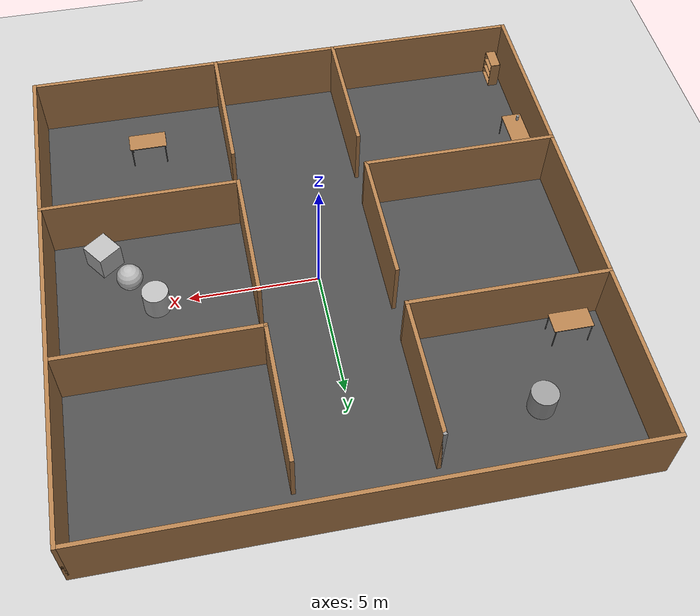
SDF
<sdf version="1.6">
 <world name="default">
  <light name="sun" type="directional">
   <pose>0 0 10 0 -0 0</pose>
   <diffuse>0.8 0.8 0.8 1</diffuse>
   <specular>0.2 0.2 0.2 1</specular>
   <attenuation>
    <range>1000</range>
    <constant>0.9</constant>
    <linear>0.01</linear>
    <quadratic>0.001</quadratic>
   </attenuation>
   <direction>-0.5 0.1 -0.9</direction>
   <spot><inner_angle>0</inner_angle><outer_angle>0</outer_angle><falloff>0</falloff></spot>
  </light>
  <model name="ground_plane">
   <static>1</static>
   <link name="link">
    <collision name="collision">
     <geometry><plane><normal>0 0 1</normal><size>100 100</size></plane></geometry>
     <surface>
      <contact><collide_bitmask>65535</collide_bitmask></contact>
      <friction><ode><mu>100</mu><mu2>50</mu2></ode></friction>
     </surface>
    </collision>
    <visual name="visual">
     <cast_shadows>0</cast_shadows>
     <geometry><plane><normal>0 0 1</normal><size>100 100</size></plane></geometry>
     <material>
      <script><uri>file://media/materials/scripts/gazebo.material</uri><name>Gazebo/Grey</name></script>
     </material>
    </visual>
   </link>
  </model>
  <gravity>0 0 -9.8</gravity>
  <magnetic_field>6e-06 2.3e-05 -4.2e-05</magnetic_field>
  <atmosphere type="adiabatic"/>
  <physics name="default_physics" default="0" type="ode">
   <max_step_size>0.001</max_step_size>
   <real_time_factor>1</real_time_factor>
   <real_time_update_rate>1000</real_time_update_rate>
  </physics>
  <scene><ambient>0.4 0.4 0.4 1</ambient><background>0.7 0.7 0.7 1</background><shadows>1</shadows></scene>
  <audio><device>default</device></audio>
  <spherical_coordinates>
   <surface_model>EARTH_WGS84</surface_model>
   <latitude_deg>0</latitude_deg>
   <longitude_deg>0</longitude_deg>
   <elevation>0</elevation>
   <heading_deg>0</heading_deg>
  </spherical_coordinates>
  <model name="building1">
   <link name="Wall_12">
    <collision name="Wall_12_Collision">
     <geometry><box><size>20.15 0.15 2.5</size></box></geometry>
     <pose>0 0 1.25 0 -0 0</pose>
    </collision>
    <visual name="Wall_12_Visual">
     <pose>0 0 1.25 0 -0 0</pose>
     <geometry><box><size>20.15 0.15 2.5</size></box></geometry>
     <material>
      <script><uri>file://media/materials/scripts/gazebo.material</uri><name>Gazebo/Wood</name></script>
      <ambient>1 1 1 1</ambient>
     </material>
     <meta><layer>0</layer></meta>
    </visual>
    <pose>10 0 0 0 -0 -1.5708</pose>
   </link>
   <link name="Wall_16">
    <collision name="Wall_16_Collision">
     <geometry><box><size>0.15 0.15 2.5</size></box></geometry>
     <pose>0 0 1.25 0 -0 0</pose>
    </collision>
    <visual name="Wall_16_Visual">
     <pose>0 0 1.25 0 -0 0</pose>
     <geometry><box><size>0.15 0.15 2.5</size></box></geometry>
     <material>
      <script><uri>file://media/materials/scripts/gazebo.material</uri><name>Gazebo/Grey</name></script>
      <ambient>1 1 1 1</ambient>
     </material>
     <meta><layer>0</layer></meta>
    </visual>
    <pose>-2.5 8.5 0 0 -0 0</pose>
   </link>
   <link name="Wall_17">
    <collision name="Wall_17_Collision">
     <geometry><box><size>5.317 0.15 2.5</size></box></geometry>
     <pose>0 0 1.25 0 -0 0</pose>
    </collision>
    <visual name="Wall_17_Visual">
     <pose>0 0 1.25 0 -0 0</pose>
     <geometry><box><size>5.317 0.15 2.5</size></box></geometry>
     <material>
      <script><uri>file://media/materials/scripts/gazebo.material</uri><name>Gazebo/Wood</name></script>
      <ambient>1 1 1 1</ambient>
     </material>
     <meta><layer>0</layer></meta>
    </visual>
    <pose>-2.5 5.9165 0 0 -0 -1.5708</pose>
   </link>
   <link name="Wall_20">
    <collision name="Wall_20_Collision">
     <geometry><box><size>7.65 0.15 2.5</size></box></geometry>
     <pose>0 0 1.25 0 -0 0</pose>
    </collision>
    <visual name="Wall_20_Visual">
     <pose>0 0 1.25 0 -0 0</pose>
     <geometry><box><size>7.65 0.15 2.5</size></box></geometry>
     <material>
      <script><uri>file://media/materials/scripts/gazebo.material</uri><name>Gazebo/Wood</name></script>
      <ambient>1 1 1 1</ambient>
     </material>
     <meta><layer>0</layer></meta>
    </visual>
    <pose>-6.25 3.333 0 0 -0 3.14159</pose>
   </link>
   <link name="Wall_23">
    <collision name="Wall_23_Collision">
     <geometry><box><size>5.316 0.15 2.5</size></box></geometry>
     <pose>0 0 1.25 0 -0 0</pose>
    </collision>
    <visual name="Wall_23_Visual">
     <pose>0 0 1.25 0 -0 0</pose>
     <geometry><box><size>5.316 0.15 2.5</size></box></geometry>
     <material>
      <script><uri>file://media/materials/scripts/gazebo.material</uri><name>Gazebo/Wood</name></script>
      <ambient>1 1 1 1</ambient>
     </material>
     <meta><layer>0</layer></meta>
    </visual>
    <pose>-2.5 -0.75 0 0 -0 -1.5708</pose>
   </link>
   <link name="Wall_27">
    <collision name="Wall_27_Collision">
     <geometry><box><size>7.65 0.15 2.5</size></box></geometry>
     <pose>0 0 1.25 0 -0 0</pose>
    </collision>
    <visual name="Wall_27_Visual">
     <pose>0 0 1.25 0 -0 0</pose>
     <geometry><box><size>7.65 0.15 2.5</size></box></geometry>
     <material>
      <script><uri>file://media/materials/scripts/gazebo.material</uri><name>Gazebo/Wood</name></script>
      <ambient>1 1 1 1</ambient>
     </material>
     <meta><layer>0</layer></meta>
    </visual>
    <pose>-6.25 -3.333 0 0 -0 0</pose>
   </link>
   <link name="Wall_3">
    <collision name="Wall_3_Collision">
     <geometry><box><size>20.15 0.15 2.5</size></box></geometry>
     <pose>0 0 1.25 0 -0 0</pose>
    </collision>
    <visual name="Wall_3_Visual">
     <pose>0 0 1.25 0 -0 0</pose>
     <geometry><box><size>20.15 0.15 2.5</size></box></geometry>
     <material>
      <script><uri>file://media/materials/scripts/gazebo.material</uri><name>Gazebo/Wood</name></script>
      <ambient>1 1 1 1</ambient>
     </material>
     <meta><layer>0</layer></meta>
    </visual>
    <pose>0 -10 0 0 -0 0</pose>
   </link>
   <link name="Wall_30">
    <collision name="Wall_30_Collision">
     <geometry><box><size>5.317 0.15 2.5</size></box></geometry>
     <pose>0 0 1.25 0 -0 0</pose>
    </collision>
    <visual name="Wall_30_Visual">
     <pose>0 0 1.25 0 -0 0</pose>
     <geometry><box><size>5.317 0.15 2.5</size></box></geometry>
     <material>
      <script><uri>file://media/materials/scripts/gazebo.material</uri><name>Gazebo/Wood</name></script>
      <ambient>1 1 1 1</ambient>
     </material>
     <meta><layer>0</layer></meta>
    </visual>
    <pose>-2.5 -7.4165 0 0 -0 -1.5708</pose>
   </link>
   <link name="Wall_33">
    <collision name="Wall_33_Collision">
     <geometry><box><size>5.317 0.15 2.5</size></box></geometry>
     <pose>0 0 1.25 0 -0 0</pose>
    </collision>
    <visual name="Wall_33_Visual">
     <pose>0 0 1.25 0 -0 0</pose>
     <geometry><box><size>5.317 0.15 2.5</size></box></geometry>
     <material>
      <script><uri>file://media/materials/scripts/gazebo.material</uri><name>Gazebo/Wood</name></script>
      <ambient>1 1 1 1</ambient>
     </material>
     <meta><layer>0</layer></meta>
    </visual>
    <pose>2.5 5.9165 0 0 -0 -1.5708</pose>
   </link>
   <link name="Wall_35">
    <collision name="Wall_35_Collision">
     <geometry><box><size>7.65 0.15 2.5</size></box></geometry>
     <pose>0 0 1.25 0 -0 0</pose>
    </collision>
    <visual name="Wall_35_Visual">
     <pose>0 0 1.25 0 -0 0</pose>
     <geometry><box><size>7.65 0.15 2.5</size></box></geometry>
     <material>
      <script><uri>file://media/materials/scripts/gazebo.material</uri><name>Gazebo/Wood</name></script>
      <ambient>1 1 1 1</ambient>
     </material>
     <meta><layer>0</layer></meta>
    </visual>
    <pose>6.25 3.333 0 0 -0 0</pose>
   </link>
   <link name="Wall_37">
    <collision name="Wall_37_Collision">
     <geometry><box><size>5.316 0.15 2.5</size></box></geometry>
     <pose>0 0 1.25 0 -0 0</pose>
    </collision>
    <visual name="Wall_37_Visual">
     <pose>0 0 1.25 0 -0 0</pose>
     <geometry><box><size>5.316 0.15 2.5</size></box></geometry>
     <material>
      <script><uri>file://media/materials/scripts/gazebo.material</uri><name>Gazebo/Wood</name></script>
      <ambient>1 1 1 1</ambient>
     </material>
     <meta><layer>0</layer></meta>
    </visual>
    <pose>2.5 -0.75 0 0 -0 -1.5708</pose>
   </link>
   <link name="Wall_39">
    <collision name="Wall_39_Collision">
     <geometry><box><size>7.65 0.15 2.5</size></box></geometry>
     <pose>0 0 1.25 0 -0 0</pose>
    </collision>
    <visual name="Wall_39_Visual">
     <pose>0 0 1.25 0 -0 0</pose>
     <geometry><box><size>7.65 0.15 2.5</size></box></geometry>
     <material>
      <script><uri>file://media/materials/scripts/gazebo.material</uri><name>Gazebo/Wood</name></script>
      <ambient>1 1 1 1</ambient>
     </material>
     <meta><layer>0</layer></meta>
    </visual>
    <pose>6.25 -3.333 0 0 -0 0</pose>
   </link>
   <link name="Wall_41">
    <collision name="Wall_41_Collision">
     <geometry><box><size>5.317 0.15 2.5</size></box></geometry>
     <pose>0 0 1.25 0 -0 0</pose>
    </collision>
    <visual name="Wall_41_Visual">
     <pose>0 0 1.25 0 -0 0</pose>
     <geometry><box><size>5.317 0.15 2.5</size></box></geometry>
     <material>
      <script><uri>file://media/materials/scripts/gazebo.material</uri><name>Gazebo/Wood</name></script>
      <ambient>1 1 1 1</ambient>
     </material>
     <meta><layer>0</layer></meta>
    </visual>
    <pose>2.5 -7.4165 0 0 -0 -1.5708</pose>
   </link>
   <link name="Wall_6">
    <collision name="Wall_6_Collision">
     <geometry><box><size>20.15 0.15 2.5</size></box></geometry>
     <pose>0 0 1.25 0 -0 0</pose>
    </collision>
    <visual name="Wall_6_Visual">
     <pose>0 0 1.25 0 -0 0</pose>
     <geometry><box><size>20.15 0.15 2.5</size></box></geometry>
     <material>
      <script><uri>file://media/materials/scripts/gazebo.material</uri><name>Gazebo/Wood</name></script>
      <ambient>1 1 1 1</ambient>
     </material>
     <meta><layer>0</layer></meta>
    </visual>
    <pose>-10 0 0 0 -0 1.5708</pose>
   </link>
   <link name="Wall_9">
    <collision name="Wall_9_Collision">
     <geometry><box><size>20.15 0.15 2.5</size></box></geometry>
     <pose>0 0 1.25 0 -0 0</pose>
    </collision>
    <visual name="Wall_9_Visual">
     <pose>0 0 1.25 0 -0 0</pose>
     <geometry><box><size>20.15 0.15 2.5</size></box></geometry>
     <material>
      <script><uri>file://media/materials/scripts/gazebo.material</uri><name>Gazebo/Wood</name></script>
      <ambient>1 1 1 1</ambient>
     </material>
     <meta><layer>0</layer></meta>
    </visual>
    <pose>0 10 0 0 -0 0</pose>
   </link>
   <static>1</static>
  </model>
  <model name="bookshelf">
   <static>1</static>
   <link name="link">
    <inertial><mass>1</mass></inertial>
    <collision name="back">
     <pose>0 0.005 0.6 0 -0 0</pose>
     <geometry><box><size>0.9 0.01 1.2</size></box></geometry>
    </collision>
    <visual name="visual1">
     <pose>0 0.005 0.6 0 -0 0</pose>
     <geometry><box><size>0.9 0.01 1.2</size></box></geometry>
     <material>
      <script><uri>file://media/materials/scripts/gazebo.material</uri><name>Gazebo/Wood</name></script>
     </material>
    </visual>
    <collision name="left_side">
     <pose>0.45 -0.195 0.6 0 -0 0</pose>
     <geometry><box><size>0.02 0.4 1.2</size></box></geometry>
    </collision>
    <visual name="visual2">
     <pose>0.45 -0.195 0.6 0 -0 0</pose>
     <geometry><box><size>0.02 0.4 1.2</size></box></geometry>
     <material>
      <script><uri>file://media/materials/scripts/gazebo.material</uri><name>Gazebo/Wood</name></script>
     </material>
    </visual>
    <collision name="right_side">
     <pose>-0.45 -0.195 0.6 0 -0 0</pose>
     <geometry><box><size>0.02 0.4 1.2</size></box></geometry>
    </collision>
    <visual name="visual3">
     <pose>-0.45 -0.195 0.6 0 -0 0</pose>
     <geometry><box><size>0.02 0.4 1.2</size></box></geometry>
     <material>
      <script><uri>file://media/materials/scripts/gazebo.material</uri><name>Gazebo/Wood</name></script>
     </material>
    </visual>
    <collision name="bottom">
     <pose>0 -0.195 0.03 0 -0 0</pose>
     <geometry><box><size>0.88 0.4 0.06</size></box></geometry>
    </collision>
    <visual name="visual4">
     <pose>0 -0.195 0.03 0 -0 0</pose>
     <geometry><box><size>0.88 0.4 0.06</size></box></geometry>
     <material>
      <script><uri>file://media/materials/scripts/gazebo.material</uri><name>Gazebo/Wood</name></script>
     </material>
    </visual>
    <collision name="top">
     <pose>0 -0.195 1.19 0 -0 0</pose>
     <geometry><box><size>0.88 0.4 0.02</size></box></geometry>
    </collision>
    <visual name="visual5">
     <pose>0 -0.195 1.19 0 -0 0</pose>
     <geometry><box><size>0.88 0.4 0.02</size></box></geometry>
     <material>
      <script><uri>file://media/materials/scripts/gazebo.material</uri><name>Gazebo/Wood</name></script>
     </material>
    </visual>
    <collision name="low_shelf">
     <pose>0 -0.195 0.43 0 -0 0</pose>
     <geometry><box><size>0.88 0.4 0.02</size></box></geometry>
    </collision>
    <visual name="visual6">
     <pose>0 -0.195 0.43 0 -0 0</pose>
     <geometry><box><size>0.88 0.4 0.02</size></box></geometry>
     <material>
      <script><uri>file://media/materials/scripts/gazebo.material</uri><name>Gazebo/Wood</name></script>
     </material>
    </visual>
    <collision name="high_shelf">
     <pose>0 -0.195 0.8 0 -0 0</pose>
     <geometry><box><size>0.88 0.4 0.02</size></box></geometry>
    </collision>
    <visual name="visual7">
     <pose>0 -0.195 0.8 0 -0 0</pose>
     <geometry><box><size>0.88 0.4 0.02</size></box></geometry>
     <material>
      <script><uri>file://media/materials/scripts/gazebo.material</uri><name>Gazebo/Wood</name></script>
     </material>
    </visual>
   </link>
   <pose>-9.76582 -9.42853 0 0 -0 1.55285</pose>
  </model>
  <model name="table">
   <static>1</static>
   <link name="link">
    <collision name="surface">
     <pose>0 0 1 0 -0 0</pose>
     <geometry><box><size>1.5 0.8 0.03</size></box></geometry>
     <surface><friction><ode><mu>0.6</mu><mu2>0.6</mu2></ode></friction></surface>
    </collision>
    <visual name="visual1">
     <pose>0 0 1 0 -0 0</pose>
     <geometry><box><size>1.5 0.8 0.03</size></box></geometry>
     <material>
      <script><uri>file://media/materials/scripts/gazebo.material</uri><name>Gazebo/Wood</name></script>
     </material>
    </visual>
    <collision name="front_left_leg">
     <pose>0.68 0.38 0.5 0 -0 0</pose>
     <geometry><cylinder><radius>0.02</radius><length>1</length></cylinder></geometry>
    </collision>
    <visual name="front_left_leg">
     <pose>0.68 0.38 0.5 0 -0 0</pose>
     <geometry><cylinder><radius>0.02</radius><length>1</length></cylinder></geometry>
     <material>
      <script><uri>file://media/materials/scripts/gazebo.material</uri><name>Gazebo/Grey</name></script>
     </material>
    </visual>
    <collision name="front_right_leg">
     <pose>0.68 -0.38 0.5 0 -0 0</pose>
     <geometry><cylinder><radius>0.02</radius><length>1</length></cylinder></geometry>
    </collision>
    <visual name="front_right_leg">
     <pose>0.68 -0.38 0.5 0 -0 0</pose>
     <geometry><cylinder><radius>0.02</radius><length>1</length></cylinder></geometry>
     <material>
      <script><uri>file://media/materials/scripts/gazebo.material</uri><name>Gazebo/Grey</name></script>
     </material>
    </visual>
    <collision name="back_right_leg">
     <pose>-0.68 -0.38 0.5 0 -0 0</pose>
     <geometry><cylinder><radius>0.02</radius><length>1</length></cylinder></geometry>
    </collision>
    <visual name="back_right_leg">
     <pose>-0.68 -0.38 0.5 0 -0 0</pose>
     <geometry><cylinder><radius>0.02</radius><length>1</length></cylinder></geometry>
     <material>
      <script><uri>file://media/materials/scripts/gazebo.material</uri><name>Gazebo/Grey</name></script>
     </material>
    </visual>
    <collision name="back_left_leg">
     <pose>-0.68 0.38 0.5 0 -0 0</pose>
     <geometry><cylinder><radius>0.02</radius><length>1</length></cylinder></geometry>
    </collision>
    <visual name="back_left_leg">
     <pose>-0.68 0.38 0.5 0 -0 0</pose>
     <geometry><cylinder><radius>0.02</radius><length>1</length></cylinder></geometry>
     <material>
      <script><uri>file://media/materials/scripts/gazebo.material</uri><name>Gazebo/Grey</name></script>
     </material>
    </visual>
   </link>
   <pose>-8.99386 -4.18417 0 0 -0 0</pose>
  </model>
  <model name="table_0">
   <static>1</static>
   <link name="link">
    <collision name="surface">
     <pose>0 0 1 0 -0 0</pose>
     <geometry><box><size>1.5 0.8 0.03</size></box></geometry>
     <surface><friction><ode><mu>0.6</mu><mu2>0.6</mu2></ode></friction></surface>
    </collision>
    <visual name="visual1">
     <pose>0 0 1 0 -0 0</pose>
     <geometry><box><size>1.5 0.8 0.03</size></box></geometry>
     <material>
      <script><uri>file://media/materials/scripts/gazebo.material</uri><name>Gazebo/Wood</name></script>
     </material>
    </visual>
    <collision name="front_left_leg">
     <pose>0.68 0.38 0.5 0 -0 0</pose>
     <geometry><cylinder><radius>0.02</radius><length>1</length></cylinder></geometry>
    </collision>
    <visual name="front_left_leg">
     <pose>0.68 0.38 0.5 0 -0 0</pose>
     <geometry><cylinder><radius>0.02</radius><length>1</length></cylinder></geometry>
     <material>
      <script><uri>file://media/materials/scripts/gazebo.material</uri><name>Gazebo/Grey</name></script>
     </material>
    </visual>
    <collision name="front_right_leg">
     <pose>0.68 -0.38 0.5 0 -0 0</pose>
     <geometry><cylinder><radius>0.02</radius><length>1</length></cylinder></geometry>
    </collision>
    <visual name="front_right_leg">
     <pose>0.68 -0.38 0.5 0 -0 0</pose>
     <geometry><cylinder><radius>0.02</radius><length>1</length></cylinder></geometry>
     <material>
      <script><uri>file://media/materials/scripts/gazebo.material</uri><name>Gazebo/Grey</name></script>
     </material>
    </visual>
    <collision name="back_right_leg">
     <pose>-0.68 -0.38 0.5 0 -0 0</pose>
     <geometry><cylinder><radius>0.02</radius><length>1</length></cylinder></geometry>
    </collision>
    <visual name="back_right_leg">
     <pose>-0.68 -0.38 0.5 0 -0 0</pose>
     <geometry><cylinder><radius>0.02</radius><length>1</length></cylinder></geometry>
     <material>
      <script><uri>file://media/materials/scripts/gazebo.material</uri><name>Gazebo/Grey</name></script>
     </material>
    </visual>
    <collision name="back_left_leg">
     <pose>-0.68 0.38 0.5 0 -0 0</pose>
     <geometry><cylinder><radius>0.02</radius><length>1</length></cylinder></geometry>
    </collision>
    <visual name="back_left_leg">
     <pose>-0.68 0.38 0.5 0 -0 0</pose>
     <geometry><cylinder><radius>0.02</radius><length>1</length></cylinder></geometry>
     <material>
      <script><uri>file://media/materials/scripts/gazebo.material</uri><name>Gazebo/Grey</name></script>
     </material>
    </visual>
   </link>
   <pose>-9.40517 -5.38692 0 0 0 -1.56327</pose>
  </model>
  <model name="beer">
   <link name="link">
    <pose>0 0 0.115 0 -0 0</pose>
    <inertial>
     <mass>0.39</mass>
     <inertia><ixx>0.00058</ixx><ixy>0</ixy><ixz>0</ixz><iyy>0.00058</iyy><iyz>0</iyz><izz>0.00019</izz></inertia>
    </inertial>
    <collision name="collision">
     <geometry><cylinder><radius>0.055</radius><length>0.23</length></cylinder></geometry>
    </collision>
    <visual name="visual">
     <geometry><cylinder><radius>0.055</radius><length>0.23</length></cylinder></geometry>
     <material>
      <script>
       <uri>model://beer/materials/scripts</uri>
       <uri>model://beer/materials/textures</uri>
       <name>Beer/Diffuse</name>
      </script>
     </material>
    </visual>
   </link>
   <pose>-9.57942 -5.81676 1.015 7e-06 7.3e-05 -0.000935</pose>
  </model>
  <model name="cabinet">
   <static>1</static>
   <link name="cabinet_bottom_plate">
    <inertial>
     <pose>0 0 -1 0 -0 0</pose>
     <inertia><ixx>2.05</ixx><ixy>0</ixy><ixz>0</ixz><iyy>2.05</iyy><iyz>0</iyz><izz>2.05</izz></inertia>
     <mass>25</mass>
    </inertial>
    <collision name="cabinet_bottom_plate_geom">
     <pose>0 0 0.01 0 -0 0</pose>
     <geometry><box><size>0.45 0.45 0.02</size></box></geometry>
    </collision>
    <visual name="cabinet_bottom_plate_geom_visual">
     <pose>0 0 0.01 0 -0 0</pose>
     <geometry><box><size>0.45 0.45 0.02</size></box></geometry>
     <material>
      <script><uri>file://media/materials/scripts/gazebo.material</uri><name>Gazebo/Wood</name></script>
     </material>
    </visual>
    <collision name="cabinet_bottom_plate_geom_cabinet_back_plate">
     <pose>0.235 0 0.51 0 -0 0</pose>
     <geometry><box><size>0.02 0.45 1.02</size></box></geometry>
    </collision>
    <visual name="cabinet_bottom_plate_geom_cabinet_back_plate_visual">
     <pose>0.235 0 0.51 0 -0 0</pose>
     <geometry><box><size>0.02 0.45 1.02</size></box></geometry>
     <material>
      <script><uri>file://media/materials/scripts/gazebo.material</uri><name>Gazebo/Wood</name></script>
     </material>
    </visual>
    <collision name="cabinet_bottom_plate_geom_cabinet_left_plate">
     <pose>0 0.235 0.51 0 -0 0</pose>
     <geometry><box><size>0.45 0.02 1.02</size></box></geometry>
    </collision>
    <visual name="cabinet_bottom_plate_geom_cabinet_left_plate_visual">
     <pose>0 0.235 0.51 0 -0 0</pose>
     <geometry><box><size>0.45 0.02 1.02</size></box></geometry>
     <material>
      <script><uri>file://media/materials/scripts/gazebo.material</uri><name>Gazebo/Wood</name></script>
     </material>
    </visual>
    <collision name="cabinet_bottom_plate_geom_cabinet_middle_plate">
     <pose>0 0 0.51 0 -0 0</pose>
     <geometry><box><size>0.45 0.45 0.02</size></box></geometry>
    </collision>
    <visual name="cabinet_bottom_plate_geom_cabinet_middle_plate_visual">
     <pose>0 0 0.51 0 -0 0</pose>
     <geometry><box><size>0.45 0.45 0.02</size></box></geometry>
     <material>
      <script><uri>file://media/materials/scripts/gazebo.material</uri><name>Gazebo/Wood</name></script>
     </material>
    </visual>
    <collision name="cabinet_bottom_plate_geom_cabinet_right_plate">
     <pose>0 -0.235 0.51 0 -0 0</pose>
     <geometry><box><size>0.45 0.02 1.02</size></box></geometry>
    </collision>
    <visual name="cabinet_bottom_plate_geom_cabinet_right_plate_visual">
     <pose>0 -0.235 0.51 0 -0 0</pose>
     <geometry><box><size>0.45 0.02 1.02</size></box></geometry>
     <material>
      <script><uri>file://media/materials/scripts/gazebo.material</uri><name>Gazebo/Wood</name></script>
     </material>
    </visual>
    <collision name="cabinet_bottom_plate_geom_cabinet_top_plate">
     <pose>0 0 1.01 0 -0 0</pose>
     <geometry><box><size>0.45 0.45 0.02</size></box></geometry>
    </collision>
    <visual name="cabinet_bottom_plate_geom_cabinet_top_plate_visual">
     <pose>0 0 1.01 0 -0 0</pose>
     <geometry><box><size>0.45 0.45 0.02</size></box></geometry>
     <material>
      <script><uri>file://media/materials/scripts/gazebo.material</uri><name>Gazebo/Wood</name></script>
     </material>
    </visual>
   </link>
   <pose>9.5834 -4.10026 0 0 -0 0</pose>
  </model>
  <model name="table_1">
   <static>1</static>
   <link name="link">
    <collision name="surface">
     <pose>0 0 1 0 -0 0</pose>
     <geometry><box><size>1.5 0.8 0.03</size></box></geometry>
     <surface><friction><ode><mu>0.6</mu><mu2>0.6</mu2></ode></friction></surface>
    </collision>
    <visual name="visual1">
     <pose>0 0 1 0 -0 0</pose>
     <geometry><box><size>1.5 0.8 0.03</size></box></geometry>
     <material>
      <script><uri>file://media/materials/scripts/gazebo.material</uri><name>Gazebo/Wood</name></script>
     </material>
    </visual>
    <collision name="front_left_leg">
     <pose>0.68 0.38 0.5 0 -0 0</pose>
     <geometry><cylinder><radius>0.02</radius><length>1</length></cylinder></geometry>
    </collision>
    <visual name="front_left_leg">
     <pose>0.68 0.38 0.5 0 -0 0</pose>
     <geometry><cylinder><radius>0.02</radius><length>1</length></cylinder></geometry>
     <material>
      <script><uri>file://media/materials/scripts/gazebo.material</uri><name>Gazebo/Grey</name></script>
     </material>
    </visual>
    <collision name="front_right_leg">
     <pose>0.68 -0.38 0.5 0 -0 0</pose>
     <geometry><cylinder><radius>0.02</radius><length>1</length></cylinder></geometry>
    </collision>
    <visual name="front_right_leg">
     <pose>0.68 -0.38 0.5 0 -0 0</pose>
     <geometry><cylinder><radius>0.02</radius><length>1</length></cylinder></geometry>
     <material>
      <script><uri>file://media/materials/scripts/gazebo.material</uri><name>Gazebo/Grey</name></script>
     </material>
    </visual>
    <collision name="back_right_leg">
     <pose>-0.68 -0.38 0.5 0 -0 0</pose>
     <geometry><cylinder><radius>0.02</radius><length>1</length></cylinder></geometry>
    </collision>
    <visual name="back_right_leg">
     <pose>-0.68 -0.38 0.5 0 -0 0</pose>
     <geometry><cylinder><radius>0.02</radius><length>1</length></cylinder></geometry>
     <material>
      <script><uri>file://media/materials/scripts/gazebo.material</uri><name>Gazebo/Grey</name></script>
     </material>
    </visual>
    <collision name="back_left_leg">
     <pose>-0.68 0.38 0.5 0 -0 0</pose>
     <geometry><cylinder><radius>0.02</radius><length>1</length></cylinder></geometry>
    </collision>
    <visual name="back_left_leg">
     <pose>-0.68 0.38 0.5 0 -0 0</pose>
     <geometry><cylinder><radius>0.02</radius><length>1</length></cylinder></geometry>
     <material>
      <script><uri>file://media/materials/scripts/gazebo.material</uri><name>Gazebo/Grey</name></script>
     </material>
    </visual>
   </link>
   <pose>5.7655 -7.50719 0 0 -0 0</pose>
  </model>
  <model name="textured_shapes">
   <pose>7.095 -1.04191 0.55 0 -0 0.636675</pose>
   <link name="box">
    <pose>0 -1.5 0 0 -0 0</pose>
    <collision name="collision"><geometry><box><size>1 1 1</size></box></geometry></collision>
    <visual name="visual">
     <geometry><box><size>1 1 1</size></box></geometry>
     <material>
      <script>
       <uri>model://textured_shapes/materials/scripts</uri>
       <uri>model://textured_shapes/materials/textures</uri>
       <name>TexturedShape/Squares</name>
      </script>
     </material>
    </visual>
    <inertial>
     <inertia><ixx>1</ixx><ixy>0</ixy><ixz>0</ixz><iyy>1</iyy><iyz>0</iyz><izz>1</izz></inertia>
     <mass>1</mass>
    </inertial>
   </link>
   <link name="sphere">
    <collision name="collision"><geometry><sphere><radius>0.5</radius></sphere></geometry></collision>
    <visual name="visual">
     <geometry><sphere><radius>0.5</radius></sphere></geometry>
     <material>
      <script>
       <uri>model://textured_shapes/materials/scripts</uri>
       <uri>model://textured_shapes/materials/textures</uri>
       <name>TexturedShape/Squares</name>
      </script>
     </material>
    </visual>
    <inertial>
     <inertia><ixx>1</ixx><ixy>0</ixy><ixz>0</ixz><iyy>1</iyy><iyz>0</iyz><izz>1</izz></inertia>
     <mass>1</mass>
    </inertial>
   </link>
   <link name="cylinder">
    <pose>0 1.5 0 0 -0 0</pose>
    <collision name="collision">
     <geometry><cylinder><radius>0.5</radius><length>1</length></cylinder></geometry>
    </collision>
    <visual name="visual">
     <geometry><cylinder><radius>0.5</radius><length>1</length></cylinder></geometry>
     <material>
      <script>
       <uri>model://textured_shapes/materials/scripts</uri>
       <uri>model://textured_shapes/materials/textures</uri>
       <name>TexturedShape/Squares</name>
      </script>
     </material>
    </visual>
    <inertial>
     <inertia><ixx>1</ixx><ixy>0</ixy><ixz>0</ixz><iyy>1</iyy><iyz>0</iyz><izz>1</izz></inertia>
     <mass>1</mass>
    </inertial>
   </link>
  </model>
  <model name="table_2">
   <static>1</static>
   <link name="link">
    <collision name="surface">
     <pose>0 0 1 0 -0 0</pose>
     <geometry><box><size>1.5 0.8 0.03</size></box></geometry>
     <surface><friction><ode><mu>0.6</mu><mu2>0.6</mu2></ode></friction></surface>
    </collision>
    <visual name="visual1">
     <pose>0 0 1 0 -0 0</pose>
     <geometry><box><size>1.5 0.8 0.03</size></box></geometry>
     <material>
      <script><uri>file://media/materials/scripts/gazebo.material</uri><name>Gazebo/Wood</name></script>
     </material>
    </visual>
    <collision name="front_left_leg">
     <pose>0.68 0.38 0.5 0 -0 0</pose>
     <geometry><cylinder><radius>0.02</radius><length>1</length></cylinder></geometry>
    </collision>
    <visual name="front_left_leg">
     <pose>0.68 0.38 0.5 0 -0 0</pose>
     <geometry><cylinder><radius>0.02</radius><length>1</length></cylinder></geometry>
     <material>
      <script><uri>file://media/materials/scripts/gazebo.material</uri><name>Gazebo/Grey</name></script>
     </material>
    </visual>
    <collision name="front_right_leg">
     <pose>0.68 -0.38 0.5 0 -0 0</pose>
     <geometry><cylinder><radius>0.02</radius><length>1</length></cylinder></geometry>
    </collision>
    <visual name="front_right_leg">
     <pose>0.68 -0.38 0.5 0 -0 0</pose>
     <geometry><cylinder><radius>0.02</radius><length>1</length></cylinder></geometry>
     <material>
      <script><uri>file://media/materials/scripts/gazebo.material</uri><name>Gazebo/Grey</name></script>
     </material>
    </visual>
    <collision name="back_right_leg">
     <pose>-0.68 -0.38 0.5 0 -0 0</pose>
     <geometry><cylinder><radius>0.02</radius><length>1</length></cylinder></geometry>
    </collision>
    <visual name="back_right_leg">
     <pose>-0.68 -0.38 0.5 0 -0 0</pose>
     <geometry><cylinder><radius>0.02</radius><length>1</length></cylinder></geometry>
     <material>
      <script><uri>file://media/materials/scripts/gazebo.material</uri><name>Gazebo/Grey</name></script>
     </material>
    </visual>
    <collision name="back_left_leg">
     <pose>-0.68 0.38 0.5 0 -0 0</pose>
     <geometry><cylinder><radius>0.02</radius><length>1</length></cylinder></geometry>
    </collision>
    <visual name="back_left_leg">
     <pose>-0.68 0.38 0.5 0 -0 0</pose>
     <geometry><cylinder><radius>0.02</radius><length>1</length></cylinder></geometry>
     <material>
      <script><uri>file://media/materials/scripts/gazebo.material</uri><name>Gazebo/Grey</name></script>
     </material>
    </visual>
   </link>
   <pose>-8.50162 4.22281 0 0 -0 0</pose>
  </model>
  <model name="unit_cylinder">
   <pose>-6.62663 6.96223 0.549992 -3e-06 -0 -8.6e-05</pose>
   <link name="link">
    <inertial>
     <mass>1</mass>
     <inertia><ixx>0.145833</ixx><ixy>0</ixy><ixz>0</ixz><iyy>0.145833</iyy><iyz>0</iyz><izz>0.125</izz></inertia>
    </inertial>
    <collision name="collision">
     <geometry><cylinder><radius>0.5</radius><length>1</length></cylinder></geometry>
    </collision>
    <visual name="visual">
     <geometry><cylinder><radius>0.5</radius><length>1</length></cylinder></geometry>
     <material>
      <script><name>Gazebo/Grey</name><uri>file://media/materials/scripts/gazebo.material</uri></script>
     </material>
    </visual>
   </link>
  </model>
  <model name="asphalt_plane">
   <static>1</static>
   <link name="link">
    <collision name="collision"><geometry><box><size>20 20 0.1</size></box></geometry></collision>
    <visual name="visual">
     <cast_shadows>0</cast_shadows>
     <geometry><box><size>20 20 0.1</size></box></geometry>
     <material>
      <script>
       <uri>model://asphalt_plane/materials/scripts</uri>
       <uri>model://asphalt_plane/materials/textures</uri>
       <name>vrc/asphalt</name>
      </script>
     </material>
    </visual>
   </link>
  </model>
 </world>
</sdf>
